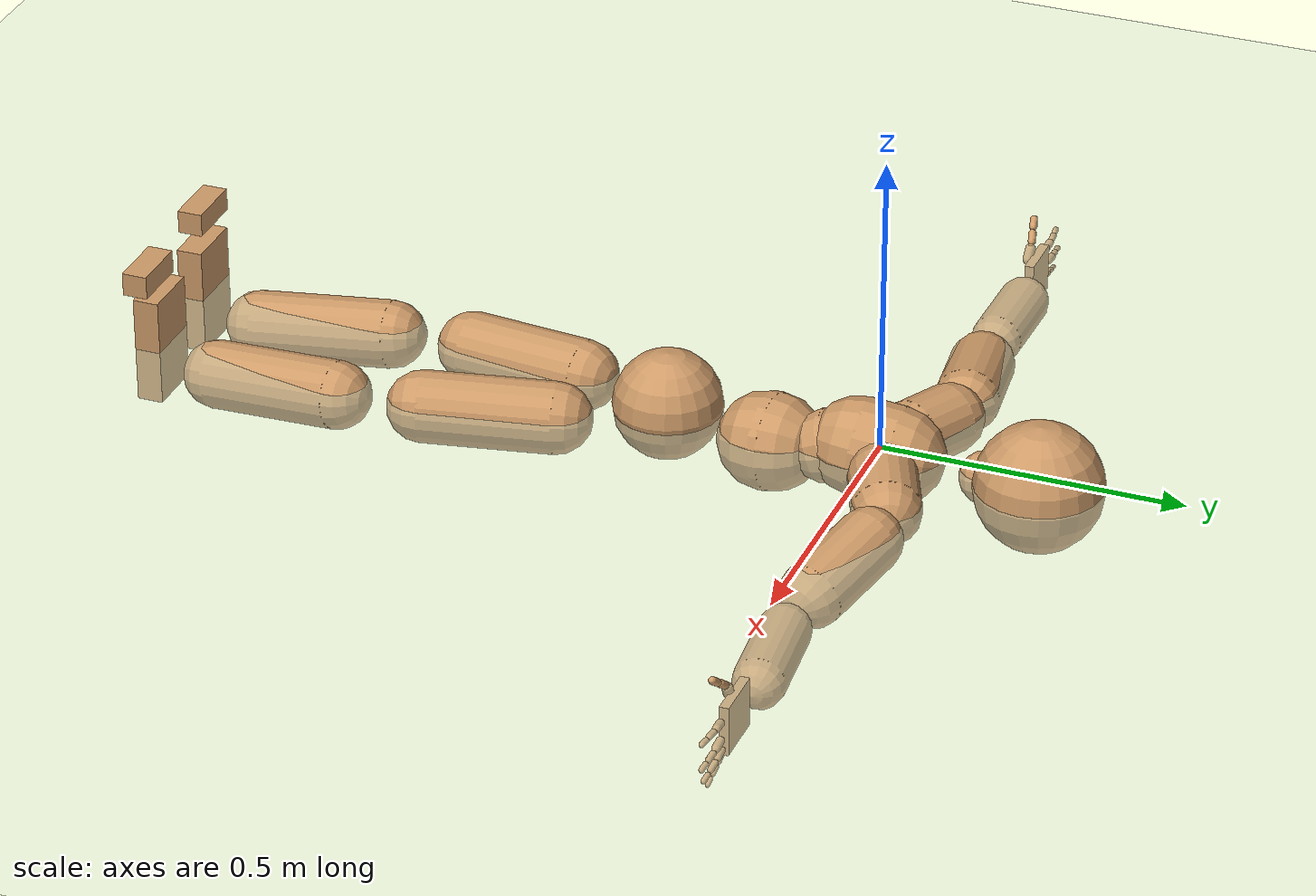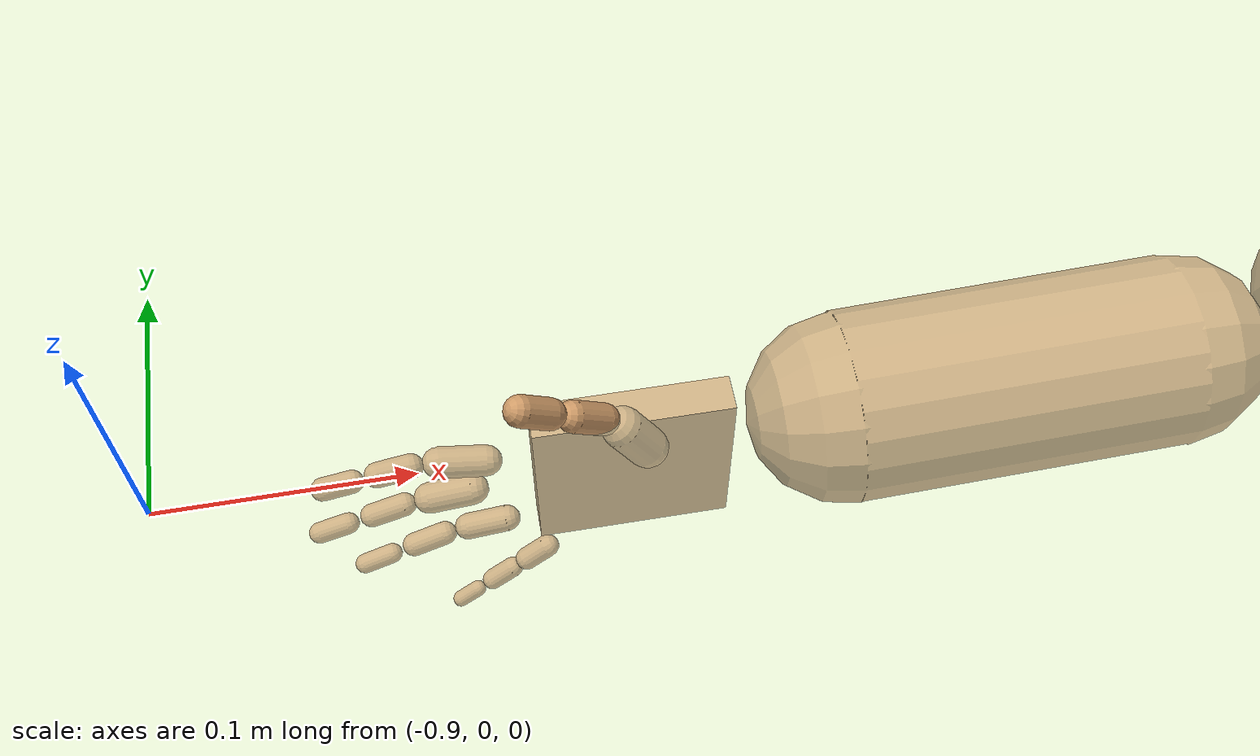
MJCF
<?xml version='1.0' encoding='utf-8'?>
<mujoco model="smplx_mapped_s114">
  <compiler coordinate="local" />
  <default>
    <joint damping="0.0" armature="0.01" stiffness="0.0" limited="true" />
    <geom conaffinity="1" condim="3" contype="7" margin="0.001" rgba="0.8 0.6 .4 1" />
  </default>
  <asset>
    <texture type="skybox" builtin="gradient" rgb1=".4 .5 .6" rgb2="0 0 0" width="100" height="100" />
    <texture builtin="flat" height="1278" mark="cross" markrgb="1 1 1" name="texgeom" random="0.01" rgb1="0.8 0.6 0.4" rgb2="0.8 0.6 0.4" type="cube" width="127" />
    <texture builtin="checker" height="100" name="texplane" rgb1="0 0 0" rgb2="0.8 0.8 0.8" type="2d" width="100" />
    <material name="MatPlane" reflectance="0.5" shininess="1" specular="1" texrepeat="60 60" texture="texplane" />
    <material name="geom" texture="texgeom" texuniform="true" />
  </asset>
  <worldbody>
    <light cutoff="100" diffuse="1 1 1" dir="-0 0 -1.3" directional="true" exponent="1" pos="0 0 1.3" specular=".1 .1 .1" />
    <geom conaffinity="1" condim="3" name="floor" pos="0 0 0" rgba="0.8 0.9 0.8 1" size="100 100 .2" type="plane" material="MatPlane" />
    <body name="Pelvis" pos="0.0010 -0.3579 0.0050">
      <freejoint name="Pelvis" />
      <geom type="sphere" contype="1" conaffinity="1" density="4629.6296296296305" size="0.09" pos="0.0000 0.0000 0.0000" name="Pelvis" />
      <body name="L_Hip" pos="0.0547 -0.0920 -0.0241">
        <joint name="L_Hip_x" type="hinge" pos="0 0 0" axis="1 0 0" stiffness="800" damping="80" armature="0.02" range="-180.00 180.00" />
        <joint name="L_Hip_y" type="hinge" pos="0 0 0" axis="0 1 0" stiffness="800" damping="80" armature="0.02" range="-180.00 180.00" />
        <joint name="L_Hip_z" type="hinge" pos="0 0 0" axis="0 0 1" stiffness="800" damping="80" armature="0.02" range="-180.00 180.00" />
        <geom type="capsule" contype="1" conaffinity="1" density="2040.816327" fromto="0.0133 -0.0716 -0.0004 0.0531 -0.2863 -0.0018" size="0.059" />
        <body name="L_Knee" pos="0.0663 -0.3579 -0.0022">
          <joint name="L_Knee_x" type="hinge" pos="0 0 0" axis="1 0 0" stiffness="800" damping="80" armature="0.02" range="-180.00 180.00" />
          <joint name="L_Knee_y" type="hinge" pos="0 0 0" axis="0 1 0" stiffness="800" damping="80" armature="0.02" range="-180.00 180.00" />
          <joint name="L_Knee_z" type="hinge" pos="0 0 0" axis="0 0 1" stiffness="800" damping="80" armature="0.02" range="-180.00 180.00" />
          <geom type="capsule" contype="1" conaffinity="1" density="1234.567901" fromto="-0.0094 -0.0753 -0.0076 -0.0375 -0.3010 -0.0306" size="0.0564" />
          <body name="L_Ankle" pos="-0.0469 -0.3763 -0.0382">
            <joint name="L_Ankle_x" type="hinge" pos="0 0 0" axis="1 0 0" stiffness="800" damping="80" armature="0.02" range="-180.00 180.00" />
            <joint name="L_Ankle_y" type="hinge" pos="0 0 0" axis="0 1 0" stiffness="800" damping="80" armature="0.02" range="-180.00 180.00" />
            <joint name="L_Ankle_z" type="hinge" pos="0 0 0" axis="0 0 1" stiffness="800" damping="80" armature="0.02" range="-180.00 180.00" />
            <geom type="box" contype="1" conaffinity="1" density="1000" pos="0.0115 -0.0234 0.0566" size="0.0502 0.0216 0.0909" quat="1.0000 0.0000 0.0000 0.0000" />
            <body name="L_Toe" pos="0.0427 -0.0539 0.1276">
              <joint name="L_Toe_x" type="hinge" pos="0 0 0" axis="1 0 0" stiffness="500" damping="50" armature="0.02" range="-180.00 180.00" />
              <joint name="L_Toe_y" type="hinge" pos="0 0 0" axis="0 1 0" stiffness="500" damping="50" armature="0.02" range="-180.00 180.00" />
              <joint name="L_Toe_z" type="hinge" pos="0 0 0" axis="0 0 1" stiffness="500" damping="50" armature="0.02" range="-180.00 180.00" />
              <geom type="box" contype="1" conaffinity="1" density="1000" pos="-0.0115 0.0227 0.0576" size="0.0493 0.0209 0.0194" quat="1.0000 0.0000 0.0000 0.0000" />
            </body>
          </body>
        </body>
      </body>
      <body name="R_Hip" pos="-0.0558 -0.1025 -0.0174">
        <joint name="R_Hip_x" type="hinge" pos="0 0 0" axis="1 0 0" stiffness="800" damping="80" armature="0.02" range="-180.00 180.00" />
        <joint name="R_Hip_y" type="hinge" pos="0 0 0" axis="0 1 0" stiffness="800" damping="80" armature="0.02" range="-180.00 180.00" />
        <joint name="R_Hip_z" type="hinge" pos="0 0 0" axis="0 0 1" stiffness="800" damping="80" armature="0.02" range="-180.00 180.00" />
        <geom type="capsule" contype="1" conaffinity="1" density="2040.816327" fromto="-0.0101 -0.0684 -0.0019 -0.0403 -0.2737 -0.0078" size="0.0588" />
        <body name="R_Knee" pos="-0.0504 -0.3422 -0.0097">
          <joint name="R_Knee_x" type="hinge" pos="0 0 0" axis="1 0 0" stiffness="800" damping="80" armature="0.02" range="-180.00 180.00" />
          <joint name="R_Knee_y" type="hinge" pos="0 0 0" axis="0 1 0" stiffness="800" damping="80" armature="0.02" range="-180.00 180.00" />
          <joint name="R_Knee_z" type="hinge" pos="0 0 0" axis="0 0 1" stiffness="800" damping="80" armature="0.02" range="-180.00 180.00" />
          <geom type="capsule" contype="1" conaffinity="1" density="1234.567901" fromto="0.0037 -0.0776 -0.0074 0.0150 -0.3105 -0.0298" size="0.0564" />
          <body name="R_Ankle" pos="0.0187 -0.3882 -0.0372">
            <joint name="R_Ankle_x" type="hinge" pos="0 0 0" axis="1 0 0" stiffness="800" damping="80" armature="0.02" range="-180.00 180.00" />
            <joint name="R_Ankle_y" type="hinge" pos="0 0 0" axis="0 1 0" stiffness="800" damping="80" armature="0.02" range="-180.00 180.00" />
            <joint name="R_Ankle_z" type="hinge" pos="0 0 0" axis="0 0 1" stiffness="800" damping="80" armature="0.02" range="-180.00 180.00" />
            <geom type="box" contype="1" conaffinity="1" density="1000" pos="-0.0091 -0.0250 0.0535" size="0.0502 0.0216 0.0909" quat="1.0000 0.0000 0.0000 0.0000" />
            <body name="R_Toe" pos="-0.0338 -0.0534 0.1340">
              <joint name="R_Toe_x" type="hinge" pos="0 0 0" axis="1 0 0" stiffness="500" damping="50" armature="0.02" range="-180.00 180.00" />
              <joint name="R_Toe_y" type="hinge" pos="0 0 0" axis="0 1 0" stiffness="500" damping="50" armature="0.02" range="-180.00 180.00" />
              <joint name="R_Toe_z" type="hinge" pos="0 0 0" axis="0 0 1" stiffness="500" damping="50" armature="0.02" range="-180.00 180.00" />
              <geom type="box" contype="1" conaffinity="1" density="1000" pos="0.0091 0.0243 0.0545" size="0.0493 0.0209 0.0194" quat="1.0000 0.0000 0.0000 0.0000" />
            </body>
          </body>
        </body>
      </body>
      <body name="Torso" pos="-0.0012 0.1041 -0.0336">
        <joint name="Torso_x" type="hinge" pos="0 0 0" axis="1 0 0" stiffness="1000" damping="100" armature="0.02" range="-180.00 180.00" />
        <joint name="Torso_y" type="hinge" pos="0 0 0" axis="0 1 0" stiffness="1000" damping="100" armature="0.02" range="-180.00 180.00" />
        <joint name="Torso_z" type="hinge" pos="0 0 0" axis="0 0 1" stiffness="1000" damping="100" armature="0.02" range="-180.00 180.00" />
        <geom type="capsule" contype="1" conaffinity="1" density="1100" fromto="0.0042 0.0644 0.0032 0.0052 0.0787 0.0039" size="0.08" />
        <body name="Spine" pos="0.0094 0.1432 0.0071">
          <joint name="Spine_x" type="hinge" pos="0 0 0" axis="1 0 0" stiffness="1000" damping="100" armature="0.02" range="-180.00 180.00" />
          <joint name="Spine_y" type="hinge" pos="0 0 0" axis="0 1 0" stiffness="1000" damping="100" armature="0.02" range="-180.00 180.00" />
          <joint name="Spine_z" type="hinge" pos="0 0 0" axis="0 0 1" stiffness="1000" damping="100" armature="0.02" range="-180.00 180.00" />
          <geom type="capsule" contype="1" conaffinity="1" density="1100" fromto="-0.0035 0.0244 0.0084 -0.0043 0.0298 0.0103" size="0.06" />
          <body name="Chest" pos="-0.0078 0.0542 0.0186">
            <joint name="Chest_x" type="hinge" pos="0 0 0" axis="1 0 0" stiffness="1000" damping="100" armature="0.02" range="-180.00 180.00" />
            <joint name="Chest_y" type="hinge" pos="0 0 0" axis="0 1 0" stiffness="1000" damping="100" armature="0.02" range="-180.00 180.00" />
            <joint name="Chest_z" type="hinge" pos="0 0 0" axis="0 0 1" stiffness="1000" damping="100" armature="0.02" range="-180.00 180.00" />
            <geom type="capsule" contype="1" conaffinity="1" density="1100" fromto="-0.0010 0.0202 -0.0022 -0.0038 0.0809 -0.0088" size="0.08" />
            <body name="Neck" pos="-0.0100 0.1584 -0.0224">
              <joint name="Neck_x" type="hinge" pos="0 0 0" axis="1 0 0" stiffness="500" damping="50" armature="0.02" range="-180.00 180.00" />
              <joint name="Neck_y" type="hinge" pos="0 0 0" axis="0 1 0" stiffness="500" damping="50" armature="0.02" range="-180.00 180.00" />
              <joint name="Neck_z" type="hinge" pos="0 0 0" axis="0 0 1" stiffness="500" damping="50" armature="0.02" range="-180.00 180.00" />
              <geom type="capsule" contype="1" conaffinity="1" density="1000" fromto="0.0107 0.0737 0.0084 0.0131 0.0901 0.0102" size="0.0437" />
              <body name="Head" pos="0.0237 0.1639 0.0186">
                <joint name="Head_x" type="hinge" pos="0 0 0" axis="1 0 0" stiffness="500" damping="50" armature="0.02" range="-180.00 180.00" />
                <joint name="Head_y" type="hinge" pos="0 0 0" axis="0 1 0" stiffness="500" damping="50" armature="0.02" range="-180.00 180.00" />
                <joint name="Head_z" type="hinge" pos="0 0 0" axis="0 0 1" stiffness="500" damping="50" armature="0.02" range="-180.00 180.00" />
                <geom type="sphere" contype="1" conaffinity="1" density="1000" size="0.1054" pos="0.0000 0.0000 0.0000" name="Head" />
              </body>
            </body>
            <body name="L_Thorax" pos="0.0422 0.0724 -0.0041">
              <joint name="L_Thorax_x" type="hinge" pos="0 0 0" axis="1 0 0" stiffness="500" damping="50" armature="0.02" range="-180.00 180.00" />
              <joint name="L_Thorax_y" type="hinge" pos="0 0 0" axis="0 1 0" stiffness="500" damping="50" armature="0.02" range="-180.00 180.00" />
              <joint name="L_Thorax_z" type="hinge" pos="0 0 0" axis="0 0 1" stiffness="500" damping="50" armature="0.02" range="-180.00 180.00" />
              <geom type="capsule" contype="1" conaffinity="1" density="1000" fromto="0.0282 0.0121 -0.0020 0.1129 0.0485 -0.0080" size="0.0564" />
              <body name="L_Shoulder" pos="0.1412 0.0606 -0.0101">
                <joint name="L_Shoulder_x" type="hinge" pos="0 0 0" axis="1 0 0" stiffness="500" damping="50" armature="0.02" range="-180.00 180.00" />
                <joint name="L_Shoulder_y" type="hinge" pos="0 0 0" axis="0 1 0" stiffness="500" damping="50" armature="0.02" range="-180.00 180.00" />
                <joint name="L_Shoulder_z" type="hinge" pos="0 0 0" axis="0 0 1" stiffness="500" damping="50" armature="0.02" range="-180.00 180.00" />
                <geom type="capsule" contype="1" conaffinity="1" density="1000" fromto="0.0468 -0.0139 -0.0084 0.1871 -0.0557 -0.0335" size="0.0533" />
                <body name="L_Elbow" pos="0.2339 -0.0697 -0.0419">
                  <joint name="L_Elbow_x" type="hinge" pos="0 0 0" axis="1 0 0" stiffness="500" damping="50" armature="0.02" range="-180.00 180.00" />
                  <joint name="L_Elbow_y" type="hinge" pos="0 0 0" axis="0 1 0" stiffness="500" damping="50" armature="0.02" range="-180.00 180.00" />
                  <joint name="L_Elbow_z" type="hinge" pos="0 0 0" axis="0 0 1" stiffness="500" damping="50" armature="0.02" range="-180.00 180.00" />
                  <geom type="capsule" contype="1" conaffinity="1" density="1000" fromto="0.0500 0.0048 0.0001 0.1999 0.0193 0.0004" size="0.0418" />
                  <body name="L_Wrist" pos="0.2498 0.0241 0.0004">
                    <joint name="L_Wrist_x" type="hinge" pos="0 0 0" axis="1 0 0" stiffness="300" damping="30" armature="0.02" range="-180.0000 180.0000" />
                    <joint name="L_Wrist_y" type="hinge" pos="0 0 0" axis="0 1 0" stiffness="300" damping="30" armature="0.02" range="-180.0000 180.0000" />
                    <joint name="L_Wrist_z" type="hinge" pos="0 0 0" axis="0 0 1" stiffness="300" damping="30" armature="0.02" range="-180.0000 180.0000" />
                    <geom type="box" contype="1" conaffinity="1" density="1000" pos="0.0456 -0.0084 -0.0022" size="0.0444 0.0076 0.0414" quat="1.0000 0.0000 0.0000 0.0000" />
                    <body name="L_Index1" pos="0.0993 -0.0083 0.0216">
                      <joint name="L_Index1_x" type="hinge" pos="0 0 0" axis="1 0 0" stiffness="100" damping="10" armature="0.02" range="-5.6250 5.6250" />
                      <joint name="L_Index1_y" type="hinge" pos="0 0 0" axis="0 1 0" stiffness="100" damping="10" armature="0.02" range="-5.6250 5.6250" />
                      <joint name="L_Index1_z" type="hinge" pos="0 0 0" axis="0 0 1" stiffness="100" damping="10" armature="0.02" range="-55.6250 55.6250" />
                      <geom type="capsule" contype="1" conaffinity="1" density="1000" fromto="0.0065 0.0003 0.0007 0.0259 0.0013 0.0029" size="0.0065" />
                      <body name="L_Index2" pos="0.0324 0.0017 0.0036">
                        <joint name="L_Index2_x" type="hinge" pos="0 0 0" axis="1 0 0" stiffness="100" damping="10" armature="0.02" range="-5.6250 5.6250" />
                        <joint name="L_Index2_y" type="hinge" pos="0 0 0" axis="0 1 0" stiffness="100" damping="10" armature="0.02" range="-5.6250 5.6250" />
                        <joint name="L_Index2_z" type="hinge" pos="0 0 0" axis="0 0 1" stiffness="100" damping="10" armature="0.02" range="-55.6250 55.6250" />
                        <geom type="capsule" contype="1" conaffinity="1" density="1000" fromto="0.0046 -0.0006 -0.0001 0.0183 -0.0022 -0.0003" size="0.0053" />
                        <body name="L_Index3" pos="0.0229 -0.0028 -0.0003">
                          <joint name="L_Index3_x" type="hinge" pos="0 0 0" axis="1 0 0" stiffness="100" damping="10" armature="0.02" range="-5.6250 5.6250" />
                          <joint name="L_Index3_y" type="hinge" pos="0 0 0" axis="0 1 0" stiffness="100" damping="10" armature="0.02" range="-5.6250 5.6250" />
                          <joint name="L_Index3_z" type="hinge" pos="0 0 0" axis="0 0 1" stiffness="100" damping="10" armature="0.02" range="-90.0000 5.6250" />
                          <geom type="capsule" contype="1" conaffinity="1" density="1000" fromto="0.0051 -0.0006 -0.0001 0.0178 -0.0021 -0.0003" size="0.0047" />
                        </body>
                      </body>
                    </body>
                    <body name="L_Middle1" pos="0.1070 -0.0054 -0.0027">
                      <joint name="L_Middle1_x" type="hinge" pos="0 0 0" axis="1 0 0" stiffness="100" damping="10" armature="0.02" range="-5.6250 5.6250" />
                      <joint name="L_Middle1_y" type="hinge" pos="0 0 0" axis="0 1 0" stiffness="100" damping="10" armature="0.02" range="-5.6250 5.6250" />
                      <joint name="L_Middle1_z" type="hinge" pos="0 0 0" axis="0 0 1" stiffness="100" damping="10" armature="0.02" range="-55.6250 55.6250" />
                      <geom type="capsule" contype="1" conaffinity="1" density="1000" fromto="0.0062 0.0001 -0.0008 0.0248 0.0004 -0.0033" size="0.0067" />
                      <body name="L_Middle2" pos="0.0309 0.0005 -0.0041">
                        <joint name="L_Middle2_x" type="hinge" pos="0 0 0" axis="1 0 0" stiffness="100" damping="10" armature="0.02" range="-5.6250 5.6250" />
                        <joint name="L_Middle2_y" type="hinge" pos="0 0 0" axis="0 1 0" stiffness="100" damping="10" armature="0.02" range="-5.6250 5.6250" />
                        <joint name="L_Middle2_z" type="hinge" pos="0 0 0" axis="0 0 1" stiffness="100" damping="10" armature="0.02" range="-55.6250 55.6250" />
                        <geom type="capsule" contype="1" conaffinity="1" density="1000" fromto="0.0047 -0.0005 -0.0008 0.0189 -0.0020 -0.0034" size="0.0050" />
                        <body name="L_Middle3" pos="0.0236 -0.0024 -0.0042">
                          <joint name="L_Middle3_x" type="hinge" pos="0 0 0" axis="1 0 0" stiffness="100" damping="10" armature="0.02" range="-5.6250 5.6250" />
                          <joint name="L_Middle3_y" type="hinge" pos="0 0 0" axis="0 1 0" stiffness="100" damping="10" armature="0.02" range="-5.6250 5.6250" />
                          <joint name="L_Middle3_z" type="hinge" pos="0 0 0" axis="0 0 1" stiffness="100" damping="10" armature="0.02" range="-90.0000 5.6250" />
                          <geom type="capsule" contype="1" conaffinity="1" density="1000" fromto="0.0052 -0.0005 -0.0009 0.0184 -0.0019 -0.0033" size="0.0045" />
                        </body>
                      </body>
                    </body>
                    <body name="L_Pinky1" pos="0.0814 -0.0139 -0.0451">
                      <joint name="L_Pinky1_x" type="hinge" pos="0 0 0" axis="1 0 0" stiffness="100" damping="10" armature="0.02" range="-5.6250 5.6250" />
                      <joint name="L_Pinky1_y" type="hinge" pos="0 0 0" axis="0 1 0" stiffness="100" damping="10" armature="0.02" range="-5.6250 5.6250" />
                      <joint name="L_Pinky1_z" type="hinge" pos="0 0 0" axis="0 0 1" stiffness="100" damping="10" armature="0.02" range="-55.6250 55.6250" />
                      <geom type="capsule" contype="1" conaffinity="1" density="1000" fromto="0.0033 -0.0004 -0.0024 0.0132 -0.0016 -0.0094" size="0.0050" />
                      <body name="L_Pinky2" pos="0.0166 -0.0019 -0.0118">
                        <joint name="L_Pinky2_x" type="hinge" pos="0 0 0" axis="1 0 0" stiffness="100" damping="10" armature="0.02" range="-5.6250 5.6250" />
                        <joint name="L_Pinky2_y" type="hinge" pos="0 0 0" axis="0 1 0" stiffness="100" damping="10" armature="0.02" range="-5.6250 5.6250" />
                        <joint name="L_Pinky2_z" type="hinge" pos="0 0 0" axis="0 0 1" stiffness="100" damping="10" armature="0.02" range="-55.6250 55.6250" />
                        <geom type="capsule" contype="1" conaffinity="1" density="1000" fromto="0.0033 -0.0004 -0.0022 0.0131 -0.0017 -0.0088" size="0.0045" />
                        <body name="L_Pinky3" pos="0.0163 -0.0021 -0.0110">
                          <joint name="L_Pinky3_x" type="hinge" pos="0 0 0" axis="1 0 0" stiffness="100" damping="10" armature="0.02" range="-5.6250 5.6250" />
                          <joint name="L_Pinky3_y" type="hinge" pos="0 0 0" axis="0 1 0" stiffness="100" damping="10" armature="0.02" range="-5.6250 5.6250" />
                          <joint name="L_Pinky3_z" type="hinge" pos="0 0 0" axis="0 0 1" stiffness="100" damping="10" armature="0.02" range="-90.0000 5.6250" />
                          <geom type="capsule" contype="1" conaffinity="1" density="1000" fromto="0.0038 -0.0005 -0.0025 0.0126 -0.0016 -0.0085" size="0.0036" />
                        </body>
                      </body>
                    </body>
                    <body name="L_Ring1" pos="0.0949 -0.0081 -0.0274">
                      <joint name="L_Ring1_x" type="hinge" pos="0 0 0" axis="1 0 0" stiffness="100" damping="10" armature="0.02" range="-5.6250 5.6250" />
                      <joint name="L_Ring1_y" type="hinge" pos="0 0 0" axis="0 1 0" stiffness="100" damping="10" armature="0.02" range="-5.6250 5.6250" />
                      <joint name="L_Ring1_z" type="hinge" pos="0 0 0" axis="0 0 1" stiffness="100" damping="10" armature="0.02" range="-55.6250 55.6250" />
                      <geom type="capsule" contype="1" conaffinity="1" density="1000" fromto="0.0058 0.0002 -0.0009 0.0231 0.0006 -0.0037" size="0.0057" />
                      <body name="L_Ring2" pos="0.0288 0.0008 -0.0047">
                        <joint name="L_Ring2_x" type="hinge" pos="0 0 0" axis="1 0 0" stiffness="100" damping="10" armature="0.02" range="-5.6250 5.6250" />
                        <joint name="L_Ring2_y" type="hinge" pos="0 0 0" axis="0 1 0" stiffness="100" damping="10" armature="0.02" range="-5.6250 5.6250" />
                        <joint name="L_Ring2_z" type="hinge" pos="0 0 0" axis="0 0 1" stiffness="100" damping="10" armature="0.02" range="-55.6250 55.6250" />
                        <geom type="capsule" contype="1" conaffinity="1" density="1000" fromto="0.0047 -0.0005 -0.0013 0.0187 -0.0018 -0.0052" size="0.0051" />
                        <body name="L_Ring3" pos="0.0233 -0.0023 -0.0066">
                          <joint name="L_Ring3_x" type="hinge" pos="0 0 0" axis="1 0 0" stiffness="100" damping="10" armature="0.02" range="-5.6250 5.6250" />
                          <joint name="L_Ring3_y" type="hinge" pos="0 0 0" axis="0 1 0" stiffness="100" damping="10" armature="0.02" range="-5.6250 5.6250" />
                          <joint name="L_Ring3_z" type="hinge" pos="0 0 0" axis="0 0 1" stiffness="100" damping="10" armature="0.02" range="-90.0000 5.6250" />
                          <geom type="capsule" contype="1" conaffinity="1" density="1000" fromto="0.0052 -0.0005 -0.0015 0.0181 -0.0018 -0.0051" size="0.0043" />
                        </body>
                      </body>
                    </body>
                    <body name="L_Thumb1" pos="0.0380 -0.0196 0.0275">
                      <joint name="L_Thumb1_x" type="hinge" pos="0 0 0" axis="1 0 0" stiffness="100" damping="10" armature="0.02" range="-55.6250 55.6250" />
                      <joint name="L_Thumb1_y" type="hinge" pos="0 0 0" axis="0 1 0" stiffness="100" damping="10" armature="0.02" range="-55.6250 55.6250" />
                      <joint name="L_Thumb1_z" type="hinge" pos="0 0 0" axis="0 0 1" stiffness="100" damping="10" armature="0.02" range="-55.6250 55.6250" />
                      <geom type="capsule" contype="1" conaffinity="1" density="1000" fromto="0.0033 0.0004 0.0053 0.0133 0.0016 0.0212" size="0.0086" />
                      <body name="L_Thumb2" pos="0.0166 0.0020 0.0265">
                        <joint name="L_Thumb2_x" type="hinge" pos="0 0 0" axis="1 0 0" stiffness="100" damping="10" armature="0.02" range="-5.6250 5.6250" />
                        <joint name="L_Thumb2_y" type="hinge" pos="0 0 0" axis="0 1 0" stiffness="100" damping="10" armature="0.02" range="-5.6250 5.6250" />
                        <joint name="L_Thumb2_z" type="hinge" pos="0 0 0" axis="0 0 1" stiffness="100" damping="10" armature="0.02" range="-5.6250 5.6250" />
                        <geom type="capsule" contype="1" conaffinity="1" density="1000" fromto="0.0041 -0.0009 0.0033 0.0163 -0.0037 0.0130" size="0.0065" />
                        <body name="L_Thumb3" pos="0.0204 -0.0046 0.0163">
                          <joint name="L_Thumb3_x" type="hinge" pos="0 0 0" axis="1 0 0" stiffness="100" damping="10" armature="0.02" range="-5.6250 5.6250" />
                          <joint name="L_Thumb3_y" type="hinge" pos="0 0 0" axis="0 1 0" stiffness="100" damping="10" armature="0.02" range="-5.6250 5.6250" />
                          <joint name="L_Thumb3_z" type="hinge" pos="0 0 0" axis="0 0 1" stiffness="100" damping="10" armature="0.02" range="-90.0000 5.6250" />
                          <geom type="capsule" contype="1" conaffinity="1" density="1000" fromto="0.0038 -0.0009 0.0030 0.0166 -0.0037 0.0133" size="0.0062" />
                        </body>
                      </body>
                    </body>
                  </body>
                </body>
              </body>
            </body>
            <body name="R_Thorax" pos="-0.0465 0.0727 -0.0067">
              <joint name="R_Thorax_x" type="hinge" pos="0 0 0" axis="1 0 0" stiffness="500" damping="50" armature="0.02" range="-180.00 180.00" />
              <joint name="R_Thorax_y" type="hinge" pos="0 0 0" axis="0 1 0" stiffness="500" damping="50" armature="0.02" range="-180.00 180.00" />
              <joint name="R_Thorax_z" type="hinge" pos="0 0 0" axis="0 0 1" stiffness="500" damping="50" armature="0.02" range="-180.00 180.00" />
              <geom type="capsule" contype="1" conaffinity="1" density="1000" fromto="-0.0261 0.0117 -0.0017 -0.1045 0.0469 -0.0066" size="0.0576" />
              <body name="R_Shoulder" pos="-0.1306 0.0586 -0.0083">
                <joint name="R_Shoulder_x" type="hinge" pos="0 0 0" axis="1 0 0" stiffness="500" damping="50" armature="0.02" range="-180.00 180.00" />
                <joint name="R_Shoulder_y" type="hinge" pos="0 0 0" axis="0 1 0" stiffness="500" damping="50" armature="0.02" range="-180.00 180.00" />
                <joint name="R_Shoulder_z" type="hinge" pos="0 0 0" axis="0 0 1" stiffness="500" damping="50" armature="0.02" range="-180.00 180.00" />
                <geom type="capsule" contype="1" conaffinity="1" density="1000" fromto="-0.0501 -0.0078 -0.0059 -0.2003 -0.0314 -0.0238" size="0.0538" />
                <body name="R_Elbow" pos="-0.2504 -0.0392 -0.0297">
                  <joint name="R_Elbow_x" type="hinge" pos="0 0 0" axis="1 0 0" stiffness="500" damping="50" armature="0.02" range="-180.00 180.00" />
                  <joint name="R_Elbow_y" type="hinge" pos="0 0 0" axis="0 1 0" stiffness="500" damping="50" armature="0.02" range="-180.00 180.00" />
                  <joint name="R_Elbow_z" type="hinge" pos="0 0 0" axis="0 0 1" stiffness="500" damping="50" armature="0.02" range="-180.00 180.00" />
                  <geom type="capsule" contype="1" conaffinity="1" density="1000" fromto="-0.0486 -0.0002 -0.0020 -0.1942 -0.0007 -0.0079" size="0.042" />
                  <body name="R_Wrist" pos="-0.2428 -0.0009 -0.0099">
                    <joint name="R_Wrist_x" type="hinge" pos="0 0 0" axis="1 0 0" stiffness="300" damping="30" armature="0.02" range="-180.0000 180.0000" />
                    <joint name="R_Wrist_y" type="hinge" pos="0 0 0" axis="0 1 0" stiffness="300" damping="30" armature="0.02" range="-180.0000 180.0000" />
                    <joint name="R_Wrist_z" type="hinge" pos="0 0 0" axis="0 0 1" stiffness="300" damping="30" armature="0.02" range="-180.0000 180.0000" />
                    <geom type="box" contype="1" conaffinity="1" density="1000" pos="-0.0449 -0.0080 -0.0014" size="0.0416 0.0078 0.0414" quat="1.0000 0.0000 0.0000 0.0000" />
                    <body name="R_Index1" pos="-0.0989 -0.0119 0.0206">
                      <joint name="R_Index1_x" type="hinge" pos="0 0 0" axis="1 0 0" stiffness="100" damping="10" armature="0.02" range="-5.6250 5.6250" />
                      <joint name="R_Index1_y" type="hinge" pos="0 0 0" axis="0 1 0" stiffness="100" damping="10" armature="0.02" range="-5.6250 5.6250" />
                      <joint name="R_Index1_z" type="hinge" pos="0 0 0" axis="0 0 1" stiffness="100" damping="10" armature="0.02" range="-55.6250 55.6250" />
                      <geom type="capsule" contype="1" conaffinity="1" density="1000" fromto="-0.0065 0.0003 0.0007 -0.0259 0.0013 0.0029" size="0.0065" />
                      <body name="R_Index2" pos="-0.0324 0.0017 0.0036">
                        <joint name="R_Index2_x" type="hinge" pos="0 0 0" axis="1 0 0" stiffness="100" damping="10" armature="0.02" range="-5.6250 5.6250" />
                        <joint name="R_Index2_y" type="hinge" pos="0 0 0" axis="0 1 0" stiffness="100" damping="10" armature="0.02" range="-5.6250 5.6250" />
                        <joint name="R_Index2_z" type="hinge" pos="0 0 0" axis="0 0 1" stiffness="100" damping="10" armature="0.02" range="-55.6250 55.6250" />
                        <geom type="capsule" contype="1" conaffinity="1" density="1000" fromto="-0.0046 -0.0006 -0.0001 -0.0183 -0.0022 -0.0003" size="0.0053" />
                        <body name="R_Index3" pos="-0.0229 -0.0028 -0.0003">
                          <joint name="R_Index3_x" type="hinge" pos="0 0 0" axis="1 0 0" stiffness="100" damping="10" armature="0.02" range="-5.6250 5.6250" />
                          <joint name="R_Index3_y" type="hinge" pos="0 0 0" axis="0 1 0" stiffness="100" damping="10" armature="0.02" range="-5.6250 5.6250" />
                          <joint name="R_Index3_z" type="hinge" pos="0 0 0" axis="0 0 1" stiffness="100" damping="10" armature="0.02" range="-5.6250 90.0000" />
                          <geom type="capsule" contype="1" conaffinity="1" density="1000" fromto="-0.0055 -0.0007 -0.0001 -0.0174 -0.0021 -0.0003" size="0.0048" />
                        </body>
                      </body>
                    </body>
                    <body name="R_Middle1" pos="-0.1066 -0.0091 -0.0036">
                      <joint name="R_Middle1_x" type="hinge" pos="0 0 0" axis="1 0 0" stiffness="100" damping="10" armature="0.02" range="-5.6250 5.6250" />
                      <joint name="R_Middle1_y" type="hinge" pos="0 0 0" axis="0 1 0" stiffness="100" damping="10" armature="0.02" range="-5.6250 5.6250" />
                      <joint name="R_Middle1_z" type="hinge" pos="0 0 0" axis="0 0 1" stiffness="100" damping="10" armature="0.02" range="-55.6250 55.6250" />
                      <geom type="capsule" contype="1" conaffinity="1" density="1000" fromto="-0.0062 0.0001 -0.0008 -0.0248 0.0004 -0.0033" size="0.0067" />
                      <body name="R_Middle2" pos="-0.0309 0.0005 -0.0041">
                        <joint name="R_Middle2_x" type="hinge" pos="0 0 0" axis="1 0 0" stiffness="100" damping="10" armature="0.02" range="-5.6250 5.6250" />
                        <joint name="R_Middle2_y" type="hinge" pos="0 0 0" axis="0 1 0" stiffness="100" damping="10" armature="0.02" range="-5.6250 5.6250" />
                        <joint name="R_Middle2_z" type="hinge" pos="0 0 0" axis="0 0 1" stiffness="100" damping="10" armature="0.02" range="-55.6250 55.6250" />
                        <geom type="capsule" contype="1" conaffinity="1" density="1000" fromto="-0.0047 -0.0005 -0.0008 -0.0189 -0.0020 -0.0034" size="0.0050" />
                        <body name="R_Middle3" pos="-0.0236 -0.0024 -0.0042">
                          <joint name="R_Middle3_x" type="hinge" pos="0 0 0" axis="1 0 0" stiffness="100" damping="10" armature="0.02" range="-5.6250 5.6250" />
                          <joint name="R_Middle3_y" type="hinge" pos="0 0 0" axis="0 1 0" stiffness="100" damping="10" armature="0.02" range="-5.6250 5.6250" />
                          <joint name="R_Middle3_z" type="hinge" pos="0 0 0" axis="0 0 1" stiffness="100" damping="10" armature="0.02" range="-5.6250 90.0000" />
                          <geom type="capsule" contype="1" conaffinity="1" density="1000" fromto="-0.0055 -0.0006 -0.0010 -0.0181 -0.0019 -0.0032" size="0.0045" />
                        </body>
                      </body>
                    </body>
                    <body name="R_Pinky1" pos="-0.0810 -0.0176 -0.0461">
                      <joint name="R_Pinky1_x" type="hinge" pos="0 0 0" axis="1 0 0" stiffness="100" damping="10" armature="0.02" range="-5.6250 5.6250" />
                      <joint name="R_Pinky1_y" type="hinge" pos="0 0 0" axis="0 1 0" stiffness="100" damping="10" armature="0.02" range="-5.6250 5.6250" />
                      <joint name="R_Pinky1_z" type="hinge" pos="0 0 0" axis="0 0 1" stiffness="100" damping="10" armature="0.02" range="-55.6250 55.6250" />
                      <geom type="capsule" contype="1" conaffinity="1" density="1000" fromto="-0.0033 -0.0004 -0.0024 -0.0132 -0.0016 -0.0094" size="0.0050" />
                      <body name="R_Pinky2" pos="-0.0166 -0.0019 -0.0118">
                        <joint name="R_Pinky2_x" type="hinge" pos="0 0 0" axis="1 0 0" stiffness="100" damping="10" armature="0.02" range="-5.6250 5.6250" />
                        <joint name="R_Pinky2_y" type="hinge" pos="0 0 0" axis="0 1 0" stiffness="100" damping="10" armature="0.02" range="-5.6250 5.6250" />
                        <joint name="R_Pinky2_z" type="hinge" pos="0 0 0" axis="0 0 1" stiffness="100" damping="10" armature="0.02" range="-55.6250 55.6250" />
                        <geom type="capsule" contype="1" conaffinity="1" density="1000" fromto="-0.0033 -0.0004 -0.0022 -0.0131 -0.0017 -0.0088" size="0.0045" />
                        <body name="R_Pinky3" pos="-0.0163 -0.0021 -0.0110">
                          <joint name="R_Pinky3_x" type="hinge" pos="0 0 0" axis="1 0 0" stiffness="100" damping="10" armature="0.02" range="-5.6250 5.6250" />
                          <joint name="R_Pinky3_y" type="hinge" pos="0 0 0" axis="0 1 0" stiffness="100" damping="10" armature="0.02" range="-5.6250 5.6250" />
                          <joint name="R_Pinky3_z" type="hinge" pos="0 0 0" axis="0 0 1" stiffness="100" damping="10" armature="0.02" range="-5.6250 90.0000" />
                          <geom type="capsule" contype="1" conaffinity="1" density="1000" fromto="-0.0040 -0.0005 -0.0027 -0.0123 -0.0016 -0.0083" size="0.0036" />
                        </body>
                      </body>
                    </body>
                    <body name="R_Ring1" pos="-0.0945 -0.0118 -0.0284">
                      <joint name="R_Ring1_x" type="hinge" pos="0 0 0" axis="1 0 0" stiffness="100" damping="10" armature="0.02" range="-5.6250 5.6250" />
                      <joint name="R_Ring1_y" type="hinge" pos="0 0 0" axis="0 1 0" stiffness="100" damping="10" armature="0.02" range="-5.6250 5.6250" />
                      <joint name="R_Ring1_z" type="hinge" pos="0 0 0" axis="0 0 1" stiffness="100" damping="10" armature="0.02" range="-55.6250 55.6250" />
                      <geom type="capsule" contype="1" conaffinity="1" density="1000" fromto="-0.0058 0.0002 -0.0009 -0.0231 0.0006 -0.0037" size="0.0057" />
                      <body name="R_Ring2" pos="-0.0288 0.0008 -0.0047">
                        <joint name="R_Ring2_x" type="hinge" pos="0 0 0" axis="1 0 0" stiffness="100" damping="10" armature="0.02" range="-5.6250 5.6250" />
                        <joint name="R_Ring2_y" type="hinge" pos="0 0 0" axis="0 1 0" stiffness="100" damping="10" armature="0.02" range="-5.6250 5.6250" />
                        <joint name="R_Ring2_z" type="hinge" pos="0 0 0" axis="0 0 1" stiffness="100" damping="10" armature="0.02" range="-55.6250 55.6250" />
                        <geom type="capsule" contype="1" conaffinity="1" density="1000" fromto="-0.0047 -0.0005 -0.0013 -0.0187 -0.0018 -0.0052" size="0.0051" />
                        <body name="R_Ring3" pos="-0.0233 -0.0023 -0.0066">
                          <joint name="R_Ring3_x" type="hinge" pos="0 0 0" axis="1 0 0" stiffness="100" damping="10" armature="0.02" range="-5.6250 5.6250" />
                          <joint name="R_Ring3_y" type="hinge" pos="0 0 0" axis="0 1 0" stiffness="100" damping="10" armature="0.02" range="-5.6250 5.6250" />
                          <joint name="R_Ring3_z" type="hinge" pos="0 0 0" axis="0 0 1" stiffness="100" damping="10" armature="0.02" range="-5.6250 90.0000" />
                          <geom type="capsule" contype="1" conaffinity="1" density="1000" fromto="-0.0054 -0.0005 -0.0015 -0.0179 -0.0017 -0.0050" size="0.0043" />
                        </body>
                      </body>
                    </body>
                    <body name="R_Thumb1" pos="-0.0376 -0.0232 0.0265">
                      <joint name="R_Thumb1_x" type="hinge" pos="0 0 0" axis="1 0 0" stiffness="100" damping="10" armature="0.02" range="-55.6250 55.6250" />
                      <joint name="R_Thumb1_y" type="hinge" pos="0 0 0" axis="0 1 0" stiffness="100" damping="10" armature="0.02" range="-55.6250 55.6250" />
                      <joint name="R_Thumb1_z" type="hinge" pos="0 0 0" axis="0 0 1" stiffness="100" damping="10" armature="0.02" range="-55.6250 55.6250" />
                      <geom type="capsule" contype="1" conaffinity="1" density="1000" fromto="-0.0033 0.0004 0.0053 -0.0133 0.0016 0.0212" size="0.0086" />
                      <body name="R_Thumb2" pos="-0.0166 0.0020 0.0265">
                        <joint name="R_Thumb2_x" type="hinge" pos="0 0 0" axis="1 0 0" stiffness="100" damping="10" armature="0.02" range="-5.6250 5.6250" />
                        <joint name="R_Thumb2_y" type="hinge" pos="0 0 0" axis="0 1 0" stiffness="100" damping="10" armature="0.02" range="-5.6250 5.6250" />
                        <joint name="R_Thumb2_z" type="hinge" pos="0 0 0" axis="0 0 1" stiffness="100" damping="10" armature="0.02" range="-5.6250 5.6250" />
                        <geom type="capsule" contype="1" conaffinity="1" density="1000" fromto="-0.0041 -0.0009 0.0033 -0.0163 -0.0037 0.0130" size="0.0065" />
                        <body name="R_Thumb3" pos="-0.0204 -0.0046 0.0163">
                          <joint name="R_Thumb3_x" type="hinge" pos="0 0 0" axis="1 0 0" stiffness="100" damping="10" armature="0.02" range="-5.6250 5.6250" />
                          <joint name="R_Thumb3_y" type="hinge" pos="0 0 0" axis="0 1 0" stiffness="100" damping="10" armature="0.02" range="-5.6250 5.6250" />
                          <joint name="R_Thumb3_z" type="hinge" pos="0 0 0" axis="0 0 1" stiffness="100" damping="10" armature="0.02" range="-5.6250 90.0000" />
                          <geom type="capsule" contype="1" conaffinity="1" density="1000" fromto="-0.0046 -0.0010 0.0037 -0.0158 -0.0035 0.0126" size="0.0064" />
                        </body>
                      </body>
                    </body>
                  </body>
                </body>
              </body>
            </body>
          </body>
        </body>
      </body>
    </body>
  </worldbody>
  <actuator>
    <motor name="L_Hip_x" joint="L_Hip_x" gear="1" />
    <motor name="L_Hip_y" joint="L_Hip_y" gear="1" />
    <motor name="L_Hip_z" joint="L_Hip_z" gear="1" />
    <motor name="L_Knee_x" joint="L_Knee_x" gear="1" />
    <motor name="L_Knee_y" joint="L_Knee_y" gear="1" />
    <motor name="L_Knee_z" joint="L_Knee_z" gear="1" />
    <motor name="L_Ankle_x" joint="L_Ankle_x" gear="1" />
    <motor name="L_Ankle_y" joint="L_Ankle_y" gear="1" />
    <motor name="L_Ankle_z" joint="L_Ankle_z" gear="1" />
    <motor name="L_Toe_x" joint="L_Toe_x" gear="1" />
    <motor name="L_Toe_y" joint="L_Toe_y" gear="1" />
    <motor name="L_Toe_z" joint="L_Toe_z" gear="1" />
    <motor name="R_Hip_x" joint="R_Hip_x" gear="1" />
    <motor name="R_Hip_y" joint="R_Hip_y" gear="1" />
    <motor name="R_Hip_z" joint="R_Hip_z" gear="1" />
    <motor name="R_Knee_x" joint="R_Knee_x" gear="1" />
    <motor name="R_Knee_y" joint="R_Knee_y" gear="1" />
    <motor name="R_Knee_z" joint="R_Knee_z" gear="1" />
    <motor name="R_Ankle_x" joint="R_Ankle_x" gear="1" />
    <motor name="R_Ankle_y" joint="R_Ankle_y" gear="1" />
    <motor name="R_Ankle_z" joint="R_Ankle_z" gear="1" />
    <motor name="R_Toe_x" joint="R_Toe_x" gear="1" />
    <motor name="R_Toe_y" joint="R_Toe_y" gear="1" />
    <motor name="R_Toe_z" joint="R_Toe_z" gear="1" />
    <motor name="Torso_x" joint="Torso_x" gear="1" />
    <motor name="Torso_y" joint="Torso_y" gear="1" />
    <motor name="Torso_z" joint="Torso_z" gear="1" />
    <motor name="Spine_x" joint="Spine_x" gear="1" />
    <motor name="Spine_y" joint="Spine_y" gear="1" />
    <motor name="Spine_z" joint="Spine_z" gear="1" />
    <motor name="Chest_x" joint="Chest_x" gear="1" />
    <motor name="Chest_y" joint="Chest_y" gear="1" />
    <motor name="Chest_z" joint="Chest_z" gear="1" />
    <motor name="Neck_x" joint="Neck_x" gear="1" />
    <motor name="Neck_y" joint="Neck_y" gear="1" />
    <motor name="Neck_z" joint="Neck_z" gear="1" />
    <motor name="Head_x" joint="Head_x" gear="1" />
    <motor name="Head_y" joint="Head_y" gear="1" />
    <motor name="Head_z" joint="Head_z" gear="1" />
    <motor name="L_Thorax_x" joint="L_Thorax_x" gear="1" />
    <motor name="L_Thorax_y" joint="L_Thorax_y" gear="1" />
    <motor name="L_Thorax_z" joint="L_Thorax_z" gear="1" />
    <motor name="L_Shoulder_x" joint="L_Shoulder_x" gear="1" />
    <motor name="L_Shoulder_y" joint="L_Shoulder_y" gear="1" />
    <motor name="L_Shoulder_z" joint="L_Shoulder_z" gear="1" />
    <motor name="L_Elbow_x" joint="L_Elbow_x" gear="1" />
    <motor name="L_Elbow_y" joint="L_Elbow_y" gear="1" />
    <motor name="L_Elbow_z" joint="L_Elbow_z" gear="1" />
    <motor name="L_Wrist_x" joint="L_Wrist_x" gear="1" />
    <motor name="L_Wrist_y" joint="L_Wrist_y" gear="1" />
    <motor name="L_Wrist_z" joint="L_Wrist_z" gear="1" />
    <motor name="L_Index1_x" joint="L_Index1_x" gear="1" />
    <motor name="L_Index1_y" joint="L_Index1_y" gear="1" />
    <motor name="L_Index1_z" joint="L_Index1_z" gear="1" />
    <motor name="L_Index2_x" joint="L_Index2_x" gear="1" />
    <motor name="L_Index2_y" joint="L_Index2_y" gear="1" />
    <motor name="L_Index2_z" joint="L_Index2_z" gear="1" />
    <motor name="L_Index3_x" joint="L_Index3_x" gear="1" />
    <motor name="L_Index3_y" joint="L_Index3_y" gear="1" />
    <motor name="L_Index3_z" joint="L_Index3_z" gear="1" />
    <motor name="L_Middle1_x" joint="L_Middle1_x" gear="1" />
    <motor name="L_Middle1_y" joint="L_Middle1_y" gear="1" />
    <motor name="L_Middle1_z" joint="L_Middle1_z" gear="1" />
    <motor name="L_Middle2_x" joint="L_Middle2_x" gear="1" />
    <motor name="L_Middle2_y" joint="L_Middle2_y" gear="1" />
    <motor name="L_Middle2_z" joint="L_Middle2_z" gear="1" />
    <motor name="L_Middle3_x" joint="L_Middle3_x" gear="1" />
    <motor name="L_Middle3_y" joint="L_Middle3_y" gear="1" />
    <motor name="L_Middle3_z" joint="L_Middle3_z" gear="1" />
    <motor name="L_Pinky1_x" joint="L_Pinky1_x" gear="1" />
    <motor name="L_Pinky1_y" joint="L_Pinky1_y" gear="1" />
    <motor name="L_Pinky1_z" joint="L_Pinky1_z" gear="1" />
    <motor name="L_Pinky2_x" joint="L_Pinky2_x" gear="1" />
    <motor name="L_Pinky2_y" joint="L_Pinky2_y" gear="1" />
    <motor name="L_Pinky2_z" joint="L_Pinky2_z" gear="1" />
    <motor name="L_Pinky3_x" joint="L_Pinky3_x" gear="1" />
    <motor name="L_Pinky3_y" joint="L_Pinky3_y" gear="1" />
    <motor name="L_Pinky3_z" joint="L_Pinky3_z" gear="1" />
    <motor name="L_Ring1_x" joint="L_Ring1_x" gear="1" />
    <motor name="L_Ring1_y" joint="L_Ring1_y" gear="1" />
    <motor name="L_Ring1_z" joint="L_Ring1_z" gear="1" />
    <motor name="L_Ring2_x" joint="L_Ring2_x" gear="1" />
    <motor name="L_Ring2_y" joint="L_Ring2_y" gear="1" />
    <motor name="L_Ring2_z" joint="L_Ring2_z" gear="1" />
    <motor name="L_Ring3_x" joint="L_Ring3_x" gear="1" />
    <motor name="L_Ring3_y" joint="L_Ring3_y" gear="1" />
    <motor name="L_Ring3_z" joint="L_Ring3_z" gear="1" />
    <motor name="L_Thumb1_x" joint="L_Thumb1_x" gear="1" />
    <motor name="L_Thumb1_y" joint="L_Thumb1_y" gear="1" />
    <motor name="L_Thumb1_z" joint="L_Thumb1_z" gear="1" />
    <motor name="L_Thumb2_x" joint="L_Thumb2_x" gear="1" />
    <motor name="L_Thumb2_y" joint="L_Thumb2_y" gear="1" />
    <motor name="L_Thumb2_z" joint="L_Thumb2_z" gear="1" />
    <motor name="L_Thumb3_x" joint="L_Thumb3_x" gear="1" />
    <motor name="L_Thumb3_y" joint="L_Thumb3_y" gear="1" />
    <motor name="L_Thumb3_z" joint="L_Thumb3_z" gear="1" />
    <motor name="R_Thorax_x" joint="R_Thorax_x" gear="1" />
    <motor name="R_Thorax_y" joint="R_Thorax_y" gear="1" />
    <motor name="R_Thorax_z" joint="R_Thorax_z" gear="1" />
    <motor name="R_Shoulder_x" joint="R_Shoulder_x" gear="1" />
    <motor name="R_Shoulder_y" joint="R_Shoulder_y" gear="1" />
    <motor name="R_Shoulder_z" joint="R_Shoulder_z" gear="1" />
    <motor name="R_Elbow_x" joint="R_Elbow_x" gear="1" />
    <motor name="R_Elbow_y" joint="R_Elbow_y" gear="1" />
    <motor name="R_Elbow_z" joint="R_Elbow_z" gear="1" />
    <motor name="R_Wrist_x" joint="R_Wrist_x" gear="1" />
    <motor name="R_Wrist_y" joint="R_Wrist_y" gear="1" />
    <motor name="R_Wrist_z" joint="R_Wrist_z" gear="1" />
    <motor name="R_Index1_x" joint="R_Index1_x" gear="1" />
    <motor name="R_Index1_y" joint="R_Index1_y" gear="1" />
    <motor name="R_Index1_z" joint="R_Index1_z" gear="1" />
    <motor name="R_Index2_x" joint="R_Index2_x" gear="1" />
    <motor name="R_Index2_y" joint="R_Index2_y" gear="1" />
    <motor name="R_Index2_z" joint="R_Index2_z" gear="1" />
    <motor name="R_Index3_x" joint="R_Index3_x" gear="1" />
    <motor name="R_Index3_y" joint="R_Index3_y" gear="1" />
    <motor name="R_Index3_z" joint="R_Index3_z" gear="1" />
    <motor name="R_Middle1_x" joint="R_Middle1_x" gear="1" />
    <motor name="R_Middle1_y" joint="R_Middle1_y" gear="1" />
    <motor name="R_Middle1_z" joint="R_Middle1_z" gear="1" />
    <motor name="R_Middle2_x" joint="R_Middle2_x" gear="1" />
    <motor name="R_Middle2_y" joint="R_Middle2_y" gear="1" />
    <motor name="R_Middle2_z" joint="R_Middle2_z" gear="1" />
    <motor name="R_Middle3_x" joint="R_Middle3_x" gear="1" />
    <motor name="R_Middle3_y" joint="R_Middle3_y" gear="1" />
    <motor name="R_Middle3_z" joint="R_Middle3_z" gear="1" />
    <motor name="R_Pinky1_x" joint="R_Pinky1_x" gear="1" />
    <motor name="R_Pinky1_y" joint="R_Pinky1_y" gear="1" />
    <motor name="R_Pinky1_z" joint="R_Pinky1_z" gear="1" />
    <motor name="R_Pinky2_x" joint="R_Pinky2_x" gear="1" />
    <motor name="R_Pinky2_y" joint="R_Pinky2_y" gear="1" />
    <motor name="R_Pinky2_z" joint="R_Pinky2_z" gear="1" />
    <motor name="R_Pinky3_x" joint="R_Pinky3_x" gear="1" />
    <motor name="R_Pinky3_y" joint="R_Pinky3_y" gear="1" />
    <motor name="R_Pinky3_z" joint="R_Pinky3_z" gear="1" />
    <motor name="R_Ring1_x" joint="R_Ring1_x" gear="1" />
    <motor name="R_Ring1_y" joint="R_Ring1_y" gear="1" />
    <motor name="R_Ring1_z" joint="R_Ring1_z" gear="1" />
    <motor name="R_Ring2_x" joint="R_Ring2_x" gear="1" />
    <motor name="R_Ring2_y" joint="R_Ring2_y" gear="1" />
    <motor name="R_Ring2_z" joint="R_Ring2_z" gear="1" />
    <motor name="R_Ring3_x" joint="R_Ring3_x" gear="1" />
    <motor name="R_Ring3_y" joint="R_Ring3_y" gear="1" />
    <motor name="R_Ring3_z" joint="R_Ring3_z" gear="1" />
    <motor name="R_Thumb1_x" joint="R_Thumb1_x" gear="1" />
    <motor name="R_Thumb1_y" joint="R_Thumb1_y" gear="1" />
    <motor name="R_Thumb1_z" joint="R_Thumb1_z" gear="1" />
    <motor name="R_Thumb2_x" joint="R_Thumb2_x" gear="1" />
    <motor name="R_Thumb2_y" joint="R_Thumb2_y" gear="1" />
    <motor name="R_Thumb2_z" joint="R_Thumb2_z" gear="1" />
    <motor name="R_Thumb3_x" joint="R_Thumb3_x" gear="1" />
    <motor name="R_Thumb3_y" joint="R_Thumb3_y" gear="1" />
    <motor name="R_Thumb3_z" joint="R_Thumb3_z" gear="1" />
  </actuator>
  <contact />
  <sensor />
  <size njmax="700" nconmax="700" />
</mujoco>
